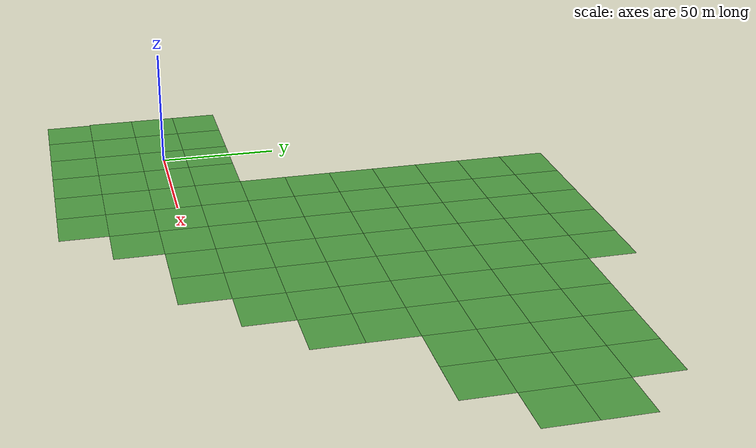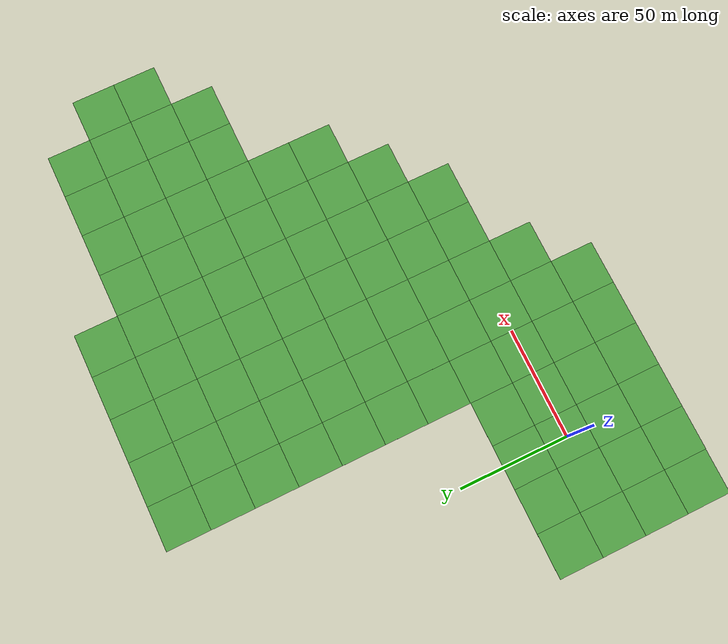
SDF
<sdf version="1.4">
 <world name="outdoor">
  <scene>
   <ambient>0.2 0.2 0.2 1.0</ambient>
   <grid>false</grid>
   <sky><clouds><speed>4</speed></clouds></sky>
  </scene>
  <plugin name="ros_interface_plugin" filename="librotors_gazebo_ros_interface_plugin.so"/>
  <physics name="default_physics" default="0" type="ode">
   <gravity>0 0 -9.8066</gravity>
   <ode>
    <solver>
     <type>quick</type>
     <iters>1</iters>
     <sor>1.3</sor>
     <use_dynamic_moi_rescaling>0</use_dynamic_moi_rescaling>
    </solver>
    <constraints>
     <cfm>0</cfm>
     <erp>0.2</erp>
     <contact_max_correcting_vel>100</contact_max_correcting_vel>
     <contact_surface_layer>0.001</contact_surface_layer>
    </constraints>
   </ode>
   <max_step_size>0.01</max_step_size>
   <real_time_factor>1</real_time_factor>
   <real_time_update_rate>100</real_time_update_rate>
  </physics>
  <plugin name="stopPhysics" filename="libStopPhysicsPlugin.so"/>
  <light type="directional" name="sun">
   <cast_shadows>false</cast_shadows>
   <pose>0 0 100 0 0 0</pose>
   <diffuse>0.8 0.8 0.8 1</diffuse>
   <specular>0.9 0.9 0.9 1</specular>
   <attenuation>
    <range>1000</range>
    <constant>0.9</constant>
    <linear>0.01</linear>
    <quadratic>0.001</quadratic>
   </attenuation>
   <direction>0.2 0.2 -0.9</direction>
  </light>
  <light type="point" name="light_bulb">
   <cast_shadows>false</cast_shadows>
   <pose>-14 0 5 0 0 0</pose>
   <diffuse>0.3 0.3 0.3 1</diffuse>
   <specular>0.0 0.0 0.0 1</specular>
   <attenuation>
    <range>80</range>
    <constant>0.9</constant>
    <linear>0.01</linear>
    <quadratic>0.001</quadratic>
   </attenuation>
  </light>
  <include><uri>model://grass_plane</uri></include>
  <model name="road_boxes">
   <static>true</static>
   <link name="link">
    <collision name="collision_1">
     <pose>51 0 0 0 0 0</pose>
     <geometry><box><size>102 7.34 0.02</size></box></geometry>
     <surface><friction><ode><mu>0.8</mu><mu2>0.8</mu2></ode></friction></surface>
    </collision>
    <collision name="collision_2">
     <pose>125 25 0 0 0 0.78539</pose>
     <geometry><box><size>72 7.34 0.02</size></box></geometry>
     <surface><friction><ode><mu>0.8</mu><mu2>0.8</mu2></ode></friction></surface>
    </collision>
    <collision name="collision_3">
     <pose>150 75 0 0 0 0</pose>
     <geometry><box><size>7.34 53 0.02</size></box></geometry>
     <surface><friction><ode><mu>0.8</mu><mu2>0.8</mu2></ode></friction></surface>
    </collision>
    <collision name="collision_4">
     <pose>173.5 100 0 0 0 0</pose>
     <geometry><box><size>54.5 7.34 0.02</size></box></geometry>
     <surface><friction><ode><mu>0.8</mu><mu2>0.8</mu2></ode></friction></surface>
    </collision>
    <collision name="collision_5">
     <pose>198 106 0 0 0 0</pose>
     <geometry><box><size>6 5 0.02</size></box></geometry>
     <surface><friction><ode><mu>0.8</mu><mu2>0.8</mu2></ode></friction></surface>
    </collision>
   </link>
  </model>
 </world>
</sdf>

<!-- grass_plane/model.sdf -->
<sdf version='1.4'>
  <model name='grass_plane'>
    <static>true</static>
    <link name='link'>
      <collision name='collision'>
        <geometry>
          <plane>
            <normal>0 0 1</normal>
            <size>500 500</size>
          </plane>
        </geometry>
        <surface>
          <friction>
            <ode>
              <mu>0.5</mu>
              <mu2>.5</mu2>
            </ode>
          </friction>
        </surface>
      </collision>

      <visual name='visual_0'>
        <pose>-40 -40 0 0 0 0</pose>

        <cast_shadows>false</cast_shadows>
        <geometry>
          <plane>
            <normal>0 0 1</normal>
            <size>20 20</size>
          </plane>
        </geometry>
        <material>
          <script>
            <uri>model://grass_plane/materials/scripts</uri>
            <uri>model://grass_plane/materials/textures</uri>
            <name>vrc/grass</name>
          </script>
        </material>
      </visual>

      <visual name='visual_1'>
        <pose>-20 -40 0 0 0 0</pose>

        <cast_shadows>false</cast_shadows>
        <geometry>
          <plane>
            <normal>0 0 1</normal>
            <size>20 20</size>
          </plane>
        </geometry>
        <material>
          <script>
            <uri>model://grass_plane/materials/scripts</uri>
            <uri>model://grass_plane/materials/textures</uri>
            <name>vrc/grass</name>
          </script>
        </material>
      </visual>

      <visual name='visual_2'>
        <pose>0 -40 0 0 0 0</pose>

        <cast_shadows>false</cast_shadows>
        <geometry>
          <plane>
            <normal>0 0 1</normal>
            <size>20 20</size>
          </plane>
        </geometry>
        <material>
          <script>
            <uri>model://grass_plane/materials/scripts</uri>
            <uri>model://grass_plane/materials/textures</uri>
            <name>vrc/grass</name>
          </script>
        </material>
      </visual>

      <visual name='visual_3'>
        <pose>20 -40 0 0 0 0</pose>

        <cast_shadows>false</cast_shadows>
        <geometry>
          <plane>
            <normal>0 0 1</normal>
            <size>20 20</size>
          </plane>
        </geometry>
        <material>
          <script>
            <uri>model://grass_plane/materials/scripts</uri>
            <uri>model://grass_plane/materials/textures</uri>
            <name>vrc/grass</name>
          </script>
        </material>
      </visual>

      <visual name='visual_4'>
        <pose>40 -40 0 0 0 0</pose>

        <cast_shadows>false</cast_shadows>
        <geometry>
          <plane>
            <normal>0 0 1</normal>
            <size>20 20</size>
          </plane>
        </geometry>
        <material>
          <script>
            <uri>model://grass_plane/materials/scripts</uri>
            <uri>model://grass_plane/materials/textures</uri>
            <name>vrc/grass</name>
          </script>
        </material>
      </visual>

      <visual name='visual_5'>
        <pose>60 -40 0 0 0 0</pose>

        <cast_shadows>false</cast_shadows>
        <geometry>
          <plane>
            <normal>0 0 1</normal>
            <size>20 20</size>
          </plane>
        </geometry>
        <material>
          <script>
            <uri>model://grass_plane/materials/scripts</uri>
            <uri>model://grass_plane/materials/textures</uri>
            <name>vrc/grass</name>
          </script>
        </material>
      </visual>

      <visual name='visual_6'>
        <pose>-40 -20 0 0 0 0</pose>

        <cast_shadows>false</cast_shadows>
        <geometry>
          <plane>
            <normal>0 0 1</normal>
            <size>20 20</size>
          </plane>
        </geometry>
        <material>
          <script>
            <uri>model://grass_plane/materials/scripts</uri>
            <uri>model://grass_plane/materials/textures</uri>
            <name>vrc/grass</name>
          </script>
        </material>
      </visual>

      <visual name='visual_7'>
        <pose>-20 -20 0 0 0 0</pose>

        <cast_shadows>false</cast_shadows>
        <geometry>
          <plane>
            <normal>0 0 1</normal>
            <size>20 20</size>
          </plane>
        </geometry>
        <material>
          <script>
            <uri>model://grass_plane/materials/scripts</uri>
            <uri>model://grass_plane/materials/textures</uri>
            <name>vrc/grass</name>
          </script>
        </material>
      </visual>

      <visual name='visual_8'>
        <pose>0 -20 0 0 0 0</pose>

        <cast_shadows>false</cast_shadows>
        <geometry>
          <plane>
            <normal>0 0 1</normal>
            <size>20 20</size>
          </plane>
        </geometry>
        <material>
          <script>
            <uri>model://grass_plane/materials/scripts</uri>
            <uri>model://grass_plane/materials/textures</uri>
            <name>vrc/grass</name>
          </script>
        </material>
      </visual>

      <visual name='visual_9'>
        <pose>20 -20 0 0 0 0</pose>

        <cast_shadows>false</cast_shadows>
        <geometry>
          <plane>
            <normal>0 0 1</normal>
            <size>20 20</size>
          </plane>
        </geometry>
        <material>
          <script>
            <uri>model://grass_plane/materials/scripts</uri>
            <uri>model://grass_plane/materials/textures</uri>
            <name>vrc/grass</name>
          </script>
        </material>
      </visual>

      <visual name='visual_10'>
        <pose>40 -20 0 0 0 0</pose>

        <cast_shadows>false</cast_shadows>
        <geometry>
          <plane>
            <normal>0 0 1</normal>
            <size>20 20</size>
          </plane>
        </geometry>
        <material>
          <script>
            <uri>model://grass_plane/materials/scripts</uri>
            <uri>model://grass_plane/materials/textures</uri>
            <name>vrc/grass</name>
          </script>
        </material>
      </visual>

      <visual name='visual_11'>
        <pose>60 -20 0 0 0 0</pose>

        <cast_shadows>false</cast_shadows>
        <geometry>
          <plane>
            <normal>0 0 1</normal>
            <size>20 20</size>
          </plane>
        </geometry>
        <material>
          <script>
            <uri>model://grass_plane/materials/scripts</uri>
            <uri>model://grass_plane/materials/textures</uri>
            <name>vrc/grass</name>
          </script>
        </material>
      </visual>

      <visual name='visual_12'>
        <pose>80 -20 0 0 0 0</pose>

        <cast_shadows>false</cast_shadows>
        <geometry>
          <plane>
            <normal>0 0 1</normal>
            <size>20 20</size>
          </plane>
        </geometry>
        <material>
          <script>
            <uri>model://grass_plane/materials/scripts</uri>
            <uri>model://grass_plane/materials/textures</uri>
            <name>vrc/grass</name>
          </script>
        </material>
      </visual>

      <visual name='visual_13'>
        <pose>-40 0 0 0 0 0</pose>

        <cast_shadows>false</cast_shadows>
        <geometry>
          <plane>
            <normal>0 0 1</normal>
            <size>20 20</size>
          </plane>
        </geometry>
        <material>
          <script>
            <uri>model://grass_plane/materials/scripts</uri>
            <uri>model://grass_plane/materials/textures</uri>
            <name>vrc/grass</name>
          </script>
        </material>
      </visual>

      <visual name='visual_14'>
        <pose>-20 0 0 0 0 0</pose>

        <cast_shadows>false</cast_shadows>
        <geometry>
          <plane>
            <normal>0 0 1</normal>
            <size>20 20</size>
          </plane>
        </geometry>
        <material>
          <script>
            <uri>model://grass_plane/materials/scripts</uri>
            <uri>model://grass_plane/materials/textures</uri>
            <name>vrc/grass</name>
          </script>
        </material>
      </visual>

      <visual name='visual_15'>
        <pose>0 0 0 0 0 0</pose>

        <cast_shadows>false</cast_shadows>
        <geometry>
          <plane>
            <normal>0 0 1</normal>
            <size>20 20</size>
          </plane>
        </geometry>
        <material>
          <script>
            <uri>model://grass_plane/materials/scripts</uri>
            <uri>model://grass_plane/materials/textures</uri>
            <name>vrc/grass</name>
          </script>
        </material>
      </visual>

      <visual name='visual_16'>
        <pose>20 0 0 0 0 0</pose>

        <cast_shadows>false</cast_shadows>
        <geometry>
          <plane>
            <normal>0 0 1</normal>
            <size>20 20</size>
          </plane>
        </geometry>
        <material>
          <script>
            <uri>model://grass_plane/materials/scripts</uri>
            <uri>model://grass_plane/materials/textures</uri>
            <name>vrc/grass</name>
          </script>
        </material>
      </visual>

      <visual name='visual_17'>
        <pose>40 0 0 0 0 0</pose>

        <cast_shadows>false</cast_shadows>
        <geometry>
          <plane>
            <normal>0 0 1</normal>
            <size>20 20</size>
          </plane>
        </geometry>
        <material>
          <script>
            <uri>model://grass_plane/materials/scripts</uri>
            <uri>model://grass_plane/materials/textures</uri>
            <name>vrc/grass</name>
          </script>
        </material>
      </visual>

      <visual name='visual_18'>
        <pose>60 0 0 0 0 0</pose>

        <cast_shadows>false</cast_shadows>
        <geometry>
          <plane>
            <normal>0 0 1</normal>
            <size>20 20</size>
          </plane>
        </geometry>
        <material>
          <script>
            <uri>model://grass_plane/materials/scripts</uri>
            <uri>model://grass_plane/materials/textures</uri>
            <name>vrc/grass</name>
          </script>
        </material>
      </visual>

      <visual name='visual_19'>
        <pose>80 0 0 0 0 0</pose>

        <cast_shadows>false</cast_shadows>
        <geometry>
          <plane>
            <normal>0 0 1</normal>
            <size>20 20</size>
          </plane>
        </geometry>
        <material>
          <script>
            <uri>model://grass_plane/materials/scripts</uri>
            <uri>model://grass_plane/materials/textures</uri>
            <name>vrc/grass</name>
          </script>
        </material>
      </visual>

      <visual name='visual_20'>
        <pose>100 0 0 0 0 0</pose>

        <cast_shadows>false</cast_shadows>
        <geometry>
          <plane>
            <normal>0 0 1</normal>
            <size>20 20</size>
          </plane>
        </geometry>
        <material>
          <script>
            <uri>model://grass_plane/materials/scripts</uri>
            <uri>model://grass_plane/materials/textures</uri>
            <name>vrc/grass</name>
          </script>
        </material>
      </visual>

      <visual name='visual_21'>
        <pose>120 0 0 0 0 0</pose>

        <cast_shadows>false</cast_shadows>
        <geometry>
          <plane>
            <normal>0 0 1</normal>
            <size>20 20</size>
          </plane>
        </geometry>
        <material>
          <script>
            <uri>model://grass_plane/materials/scripts</uri>
            <uri>model://grass_plane/materials/textures</uri>
            <name>vrc/grass</name>
          </script>
        </material>
      </visual>

      <visual name='visual_22'>
        <pose>-40 20 0 0 0 0</pose>

        <cast_shadows>false</cast_shadows>
        <geometry>
          <plane>
            <normal>0 0 1</normal>
            <size>20 20</size>
          </plane>
        </geometry>
        <material>
          <script>
            <uri>model://grass_plane/materials/scripts</uri>
            <uri>model://grass_plane/materials/textures</uri>
            <name>vrc/grass</name>
          </script>
        </material>
      </visual>

      <visual name='visual_23'>
        <pose>-20 20 0 0 0 0</pose>

        <cast_shadows>false</cast_shadows>
        <geometry>
          <plane>
            <normal>0 0 1</normal>
            <size>20 20</size>
          </plane>
        </geometry>
        <material>
          <script>
            <uri>model://grass_plane/materials/scripts</uri>
            <uri>model://grass_plane/materials/textures</uri>
            <name>vrc/grass</name>
          </script>
        </material>
      </visual>

      <visual name='visual_24'>
        <pose>0 20 0 0 0 0</pose>

        <cast_shadows>false</cast_shadows>
        <geometry>
          <plane>
            <normal>0 0 1</normal>
            <size>20 20</size>
          </plane>
        </geometry>
        <material>
          <script>
            <uri>model://grass_plane/materials/scripts</uri>
            <uri>model://grass_plane/materials/textures</uri>
            <name>vrc/grass</name>
          </script>
        </material>
      </visual>

      <visual name='visual_25'>
        <pose>20 20 0 0 0 0</pose>

        <cast_shadows>false</cast_shadows>
        <geometry>
          <plane>
            <normal>0 0 1</normal>
            <size>20 20</size>
          </plane>
        </geometry>
        <material>
          <script>
            <uri>model://grass_plane/materials/scripts</uri>
            <uri>model://grass_plane/materials/textures</uri>
            <name>vrc/grass</name>
          </script>
        </material>
      </visual>

      <visual name='visual_26'>
        <pose>40 20 0 0 0 0</pose>

        <cast_shadows>false</cast_shadows>
        <geometry>
          <plane>
            <normal>0 0 1</normal>
            <size>20 20</size>
          </plane>
        </geometry>
        <material>
          <script>
            <uri>model://grass_plane/materials/scripts</uri>
            <uri>model://grass_plane/materials/textures</uri>
            <name>vrc/grass</name>
          </script>
        </material>
      </visual>

      <visual name='visual_27'>
        <pose>60 20 0 0 0 0</pose>

        <cast_shadows>false</cast_shadows>
        <geometry>
          <plane>
            <normal>0 0 1</normal>
            <size>20 20</size>
          </plane>
        </geometry>
        <material>
          <script>
            <uri>model://grass_plane/materials/scripts</uri>
            <uri>model://grass_plane/materials/textures</uri>
            <name>vrc/grass</name>
          </script>
        </material>
      </visual>

      <visual name='visual_28'>
        <pose>80 20 0 0 0 0</pose>

        <cast_shadows>false</cast_shadows>
        <geometry>
          <plane>
            <normal>0 0 1</normal>
            <size>20 20</size>
          </plane>
        </geometry>
        <material>
          <script>
            <uri>model://grass_plane/materials/scripts</uri>
            <uri>model://grass_plane/materials/textures</uri>
            <name>vrc/grass</name>
          </script>
        </material>
      </visual>

      <visual name='visual_29'>
        <pose>100 20 0 0 0 0</pose>

        <cast_shadows>false</cast_shadows>
        <geometry>
          <plane>
            <normal>0 0 1</normal>
            <size>20 20</size>
          </plane>
        </geometry>
        <material>
          <script>
            <uri>model://grass_plane/materials/scripts</uri>
            <uri>model://grass_plane/materials/textures</uri>
            <name>vrc/grass</name>
          </script>
        </material>
      </visual>

      <visual name='visual_30'>
        <pose>120 20 0 0 0 0</pose>

        <cast_shadows>false</cast_shadows>
        <geometry>
          <plane>
            <normal>0 0 1</normal>
            <size>20 20</size>
          </plane>
        </geometry>
        <material>
          <script>
            <uri>model://grass_plane/materials/scripts</uri>
            <uri>model://grass_plane/materials/textures</uri>
            <name>vrc/grass</name>
          </script>
        </material>
      </visual>

      <visual name='visual_31'>
        <pose>140 20 0 0 0 0</pose>

        <cast_shadows>false</cast_shadows>
        <geometry>
          <plane>
            <normal>0 0 1</normal>
            <size>20 20</size>
          </plane>
        </geometry>
        <material>
          <script>
            <uri>model://grass_plane/materials/scripts</uri>
            <uri>model://grass_plane/materials/textures</uri>
            <name>vrc/grass</name>
          </script>
        </material>
      </visual>

      <visual name='visual_32'>
        <pose>40 40 0 0 0 0</pose>

        <cast_shadows>false</cast_shadows>
        <geometry>
          <plane>
            <normal>0 0 1</normal>
            <size>20 20</size>
          </plane>
        </geometry>
        <material>
          <script>
            <uri>model://grass_plane/materials/scripts</uri>
            <uri>model://grass_plane/materials/textures</uri>
            <name>vrc/grass</name>
          </script>
        </material>
      </visual>

      <visual name='visual_33'>
        <pose>60 40 0 0 0 0</pose>

        <cast_shadows>false</cast_shadows>
        <geometry>
          <plane>
            <normal>0 0 1</normal>
            <size>20 20</size>
          </plane>
        </geometry>
        <material>
          <script>
            <uri>model://grass_plane/materials/scripts</uri>
            <uri>model://grass_plane/materials/textures</uri>
            <name>vrc/grass</name>
          </script>
        </material>
      </visual>

      <visual name='visual_34'>
        <pose>80 40 0 0 0 0</pose>

        <cast_shadows>false</cast_shadows>
        <geometry>
          <plane>
            <normal>0 0 1</normal>
            <size>20 20</size>
          </plane>
        </geometry>
        <material>
          <script>
            <uri>model://grass_plane/materials/scripts</uri>
            <uri>model://grass_plane/materials/textures</uri>
            <name>vrc/grass</name>
          </script>
        </material>
      </visual>

      <visual name='visual_35'>
        <pose>100 40 0 0 0 0</pose>

        <cast_shadows>false</cast_shadows>
        <geometry>
          <plane>
            <normal>0 0 1</normal>
            <size>20 20</size>
          </plane>
        </geometry>
        <material>
          <script>
            <uri>model://grass_plane/materials/scripts</uri>
            <uri>model://grass_plane/materials/textures</uri>
            <name>vrc/grass</name>
          </script>
        </material>
      </visual>

      <visual name='visual_36'>
        <pose>120 40 0 0 0 0</pose>

        <cast_shadows>false</cast_shadows>
        <geometry>
          <plane>
            <normal>0 0 1</normal>
            <size>20 20</size>
          </plane>
        </geometry>
        <material>
          <script>
            <uri>model://grass_plane/materials/scripts</uri>
            <uri>model://grass_plane/materials/textures</uri>
            <name>vrc/grass</name>
          </script>
        </material>
      </visual>

      <visual name='visual_37'>
        <pose>140 40 0 0 0 0</pose>

        <cast_shadows>false</cast_shadows>
        <geometry>
          <plane>
            <normal>0 0 1</normal>
            <size>20 20</size>
          </plane>
        </geometry>
        <material>
          <script>
            <uri>model://grass_plane/materials/scripts</uri>
            <uri>model://grass_plane/materials/textures</uri>
            <name>vrc/grass</name>
          </script>
        </material>
      </visual>

      <visual name='visual_38'>
        <pose>160 40 0 0 0 0</pose>

        <cast_shadows>false</cast_shadows>
        <geometry>
          <plane>
            <normal>0 0 1</normal>
            <size>20 20</size>
          </plane>
        </geometry>
        <material>
          <script>
            <uri>model://grass_plane/materials/scripts</uri>
            <uri>model://grass_plane/materials/textures</uri>
            <name>vrc/grass</name>
          </script>
        </material>
      </visual>

      <visual name='visual_39'>
        <pose>40 60 0 0 0 0</pose>

        <cast_shadows>false</cast_shadows>
        <geometry>
          <plane>
            <normal>0 0 1</normal>
            <size>20 20</size>
          </plane>
        </geometry>
        <material>
          <script>
            <uri>model://grass_plane/materials/scripts</uri>
            <uri>model://grass_plane/materials/textures</uri>
            <name>vrc/grass</name>
          </script>
        </material>
      </visual>

      <visual name='visual_40'>
        <pose>60 60 0 0 0 0</pose>

        <cast_shadows>false</cast_shadows>
        <geometry>
          <plane>
            <normal>0 0 1</normal>
            <size>20 20</size>
          </plane>
        </geometry>
        <material>
          <script>
            <uri>model://grass_plane/materials/scripts</uri>
            <uri>model://grass_plane/materials/textures</uri>
            <name>vrc/grass</name>
          </script>
        </material>
      </visual>

      <visual name='visual_41'>
        <pose>80 60 0 0 0 0</pose>

        <cast_shadows>false</cast_shadows>
        <geometry>
          <plane>
            <normal>0 0 1</normal>
            <size>20 20</size>
          </plane>
        </geometry>
        <material>
          <script>
            <uri>model://grass_plane/materials/scripts</uri>
            <uri>model://grass_plane/materials/textures</uri>
            <name>vrc/grass</name>
          </script>
        </material>
      </visual>

      <visual name='visual_42'>
        <pose>100 60 0 0 0 0</pose>

        <cast_shadows>false</cast_shadows>
        <geometry>
          <plane>
            <normal>0 0 1</normal>
            <size>20 20</size>
          </plane>
        </geometry>
        <material>
          <script>
            <uri>model://grass_plane/materials/scripts</uri>
            <uri>model://grass_plane/materials/textures</uri>
            <name>vrc/grass</name>
          </script>
        </material>
      </visual>

      <visual name='visual_43'>
        <pose>120 60 0 0 0 0</pose>

        <cast_shadows>false</cast_shadows>
        <geometry>
          <plane>
            <normal>0 0 1</normal>
            <size>20 20</size>
          </plane>
        </geometry>
        <material>
          <script>
            <uri>model://grass_plane/materials/scripts</uri>
            <uri>model://grass_plane/materials/textures</uri>
            <name>vrc/grass</name>
          </script>
        </material>
      </visual>

      <visual name='visual_44'>
        <pose>140 60 0 0 0 0</pose>

        <cast_shadows>false</cast_shadows>
        <geometry>
          <plane>
            <normal>0 0 1</normal>
            <size>20 20</size>
          </plane>
        </geometry>
        <material>
          <script>
            <uri>model://grass_plane/materials/scripts</uri>
            <uri>model://grass_plane/materials/textures</uri>
            <name>vrc/grass</name>
          </script>
        </material>
      </visual>

      <visual name='visual_45'>
        <pose>160 60 0 0 0 0</pose>

        <cast_shadows>false</cast_shadows>
        <geometry>
          <plane>
            <normal>0 0 1</normal>
            <size>20 20</size>
          </plane>
        </geometry>
        <material>
          <script>
            <uri>model://grass_plane/materials/scripts</uri>
            <uri>model://grass_plane/materials/textures</uri>
            <name>vrc/grass</name>
          </script>
        </material>
      </visual>

      <visual name='visual_46'>
        <pose>40 80 0 0 0 0</pose>

        <cast_shadows>false</cast_shadows>
        <geometry>
          <plane>
            <normal>0 0 1</normal>
            <size>20 20</size>
          </plane>
        </geometry>
        <material>
          <script>
            <uri>model://grass_plane/materials/scripts</uri>
            <uri>model://grass_plane/materials/textures</uri>
            <name>vrc/grass</name>
          </script>
        </material>
      </visual>

      <visual name='visual_47'>
        <pose>60 80 0 0 0 0</pose>

        <cast_shadows>false</cast_shadows>
        <geometry>
          <plane>
            <normal>0 0 1</normal>
            <size>20 20</size>
          </plane>
        </geometry>
        <material>
          <script>
            <uri>model://grass_plane/materials/scripts</uri>
            <uri>model://grass_plane/materials/textures</uri>
            <name>vrc/grass</name>
          </script>
        </material>
      </visual>

      <visual name='visual_48'>
        <pose>80 80 0 0 0 0</pose>

        <cast_shadows>false</cast_shadows>
        <geometry>
          <plane>
            <normal>0 0 1</normal>
            <size>20 20</size>
          </plane>
        </geometry>
        <material>
          <script>
            <uri>model://grass_plane/materials/scripts</uri>
            <uri>model://grass_plane/materials/textures</uri>
            <name>vrc/grass</name>
          </script>
        </material>
      </visual>

      <visual name='visual_49'>
        <pose>100 80 0 0 0 0</pose>

        <cast_shadows>false</cast_shadows>
        <geometry>
          <plane>
            <normal>0 0 1</normal>
            <size>20 20</size>
          </plane>
        </geometry>
        <material>
          <script>
            <uri>model://grass_plane/materials/scripts</uri>
            <uri>model://grass_plane/materials/textures</uri>
            <name>vrc/grass</name>
          </script>
        </material>
      </visual>

      <visual name='visual_50'>
        <pose>120 80 0 0 0 0</pose>

        <cast_shadows>false</cast_shadows>
        <geometry>
          <plane>
            <normal>0 0 1</normal>
            <size>20 20</size>
          </plane>
        </geometry>
        <material>
          <script>
            <uri>model://grass_plane/materials/scripts</uri>
            <uri>model://grass_plane/materials/textures</uri>
            <name>vrc/grass</name>
          </script>
        </material>
      </visual>

      <visual name='visual_51'>
        <pose>140 80 0 0 0 0</pose>

        <cast_shadows>false</cast_shadows>
        <geometry>
          <plane>
            <normal>0 0 1</normal>
            <size>20 20</size>
          </plane>
        </geometry>
        <material>
          <script>
            <uri>model://grass_plane/materials/scripts</uri>
            <uri>model://grass_plane/materials/textures</uri>
            <name>vrc/grass</name>
          </script>
        </material>
      </visual>

      <visual name='visual_52'>
        <pose>160 80 0 0 0 0</pose>

        <cast_shadows>false</cast_shadows>
        <geometry>
          <plane>
            <normal>0 0 1</normal>
            <size>20 20</size>
          </plane>
        </geometry>
        <material>
          <script>
            <uri>model://grass_plane/materials/scripts</uri>
            <uri>model://grass_plane/materials/textures</uri>
            <name>vrc/grass</name>
          </script>
        </material>
      </visual>

      <visual name='visual_53'>
        <pose>180 80 0 0 0 0</pose>

        <cast_shadows>false</cast_shadows>
        <geometry>
          <plane>
            <normal>0 0 1</normal>
            <size>20 20</size>
          </plane>
        </geometry>
        <material>
          <script>
            <uri>model://grass_plane/materials/scripts</uri>
            <uri>model://grass_plane/materials/textures</uri>
            <name>vrc/grass</name>
          </script>
        </material>
      </visual>

      <visual name='visual_54'>
        <pose>200 80 0 0 0 0</pose>

        <cast_shadows>false</cast_shadows>
        <geometry>
          <plane>
            <normal>0 0 1</normal>
            <size>20 20</size>
          </plane>
        </geometry>
        <material>
          <script>
            <uri>model://grass_plane/materials/scripts</uri>
            <uri>model://grass_plane/materials/textures</uri>
            <name>vrc/grass</name>
          </script>
        </material>
      </visual>

      <visual name='visual_55'>
        <pose>40 100 0 0 0 0</pose>

        <cast_shadows>false</cast_shadows>
        <geometry>
          <plane>
            <normal>0 0 1</normal>
            <size>20 20</size>
          </plane>
        </geometry>
        <material>
          <script>
            <uri>model://grass_plane/materials/scripts</uri>
            <uri>model://grass_plane/materials/textures</uri>
            <name>vrc/grass</name>
          </script>
        </material>
      </visual>

      <visual name='visual_56'>
        <pose>60 100 0 0 0 0</pose>

        <cast_shadows>false</cast_shadows>
        <geometry>
          <plane>
            <normal>0 0 1</normal>
            <size>20 20</size>
          </plane>
        </geometry>
        <material>
          <script>
            <uri>model://grass_plane/materials/scripts</uri>
            <uri>model://grass_plane/materials/textures</uri>
            <name>vrc/grass</name>
          </script>
        </material>
      </visual>

      <visual name='visual_57'>
        <pose>80 100 0 0 0 0</pose>

        <cast_shadows>false</cast_shadows>
        <geometry>
          <plane>
            <normal>0 0 1</normal>
            <size>20 20</size>
          </plane>
        </geometry>
        <material>
          <script>
            <uri>model://grass_plane/materials/scripts</uri>
            <uri>model://grass_plane/materials/textures</uri>
            <name>vrc/grass</name>
          </script>
        </material>
      </visual>

      <visual name='visual_58'>
        <pose>100 100 0 0 0 0</pose>

        <cast_shadows>false</cast_shadows>
        <geometry>
          <plane>
            <normal>0 0 1</normal>
            <size>20 20</size>
          </plane>
        </geometry>
        <material>
          <script>
            <uri>model://grass_plane/materials/scripts</uri>
            <uri>model://grass_plane/materials/textures</uri>
            <name>vrc/grass</name>
          </script>
        </material>
      </visual>

      <visual name='visual_59'>
        <pose>120 100 0 0 0 0</pose>

        <cast_shadows>false</cast_shadows>
        <geometry>
          <plane>
            <normal>0 0 1</normal>
            <size>20 20</size>
          </plane>
        </geometry>
        <material>
          <script>
            <uri>model://grass_plane/materials/scripts</uri>
            <uri>model://grass_plane/materials/textures</uri>
            <name>vrc/grass</name>
          </script>
        </material>
      </visual>

      <visual name='visual_60'>
        <pose>140 100 0 0 0 0</pose>

        <cast_shadows>false</cast_shadows>
        <geometry>
          <plane>
            <normal>0 0 1</normal>
            <size>20 20</size>
          </plane>
        </geometry>
        <material>
          <script>
            <uri>model://grass_plane/materials/scripts</uri>
            <uri>model://grass_plane/materials/textures</uri>
            <name>vrc/grass</name>
          </script>
        </material>
      </visual>

      <visual name='visual_61'>
        <pose>160 100 0 0 0 0</pose>

        <cast_shadows>false</cast_shadows>
        <geometry>
          <plane>
            <normal>0 0 1</normal>
            <size>20 20</size>
          </plane>
        </geometry>
        <material>
          <script>
            <uri>model://grass_plane/materials/scripts</uri>
            <uri>model://grass_plane/materials/textures</uri>
            <name>vrc/grass</name>
          </script>
        </material>
      </visual>

      <visual name='visual_62'>
        <pose>180 100 0 0 0 0</pose>

        <cast_shadows>false</cast_shadows>
        <geometry>
          <plane>
            <normal>0 0 1</normal>
            <size>20 20</size>
          </plane>
        </geometry>
        <material>
          <script>
            <uri>model://grass_plane/materials/scripts</uri>
            <uri>model://grass_plane/materials/textures</uri>
            <name>vrc/grass</name>
          </script>
        </material>
      </visual>

      <visual name='visual_63'>
        <pose>200 100 0 0 0 0</pose>

        <cast_shadows>false</cast_shadows>
        <geometry>
          <plane>
            <normal>0 0 1</normal>
            <size>20 20</size>
          </plane>
        </geometry>
        <material>
          <script>
            <uri>model://grass_plane/materials/scripts</uri>
            <uri>model://grass_plane/materials/textures</uri>
            <name>vrc/grass</name>
          </script>
        </material>
      </visual>

      <visual name='visual_63a'>
        <pose>220 100 0 0 0 0</pose>

        <cast_shadows>false</cast_shadows>
        <geometry>
          <plane>
            <normal>0 0 1</normal>
            <size>20 20</size>
          </plane>
        </geometry>
        <material>
          <script>
            <uri>model://grass_plane/materials/scripts</uri>
            <uri>model://grass_plane/materials/textures</uri>
            <name>vrc/grass</name>
          </script>
        </material>
      </visual>

      <visual name='visual_64'>
        <pose>40 120 0 0 0 0</pose>

        <cast_shadows>false</cast_shadows>
        <geometry>
          <plane>
            <normal>0 0 1</normal>
            <size>20 20</size>
          </plane>
        </geometry>
        <material>
          <script>
            <uri>model://grass_plane/materials/scripts</uri>
            <uri>model://grass_plane/materials/textures</uri>
            <name>vrc/grass</name>
          </script>
        </material>
      </visual>

      <visual name='visual_65'>
        <pose>60 120 0 0 0 0</pose>

        <cast_shadows>false</cast_shadows>
        <geometry>
          <plane>
            <normal>0 0 1</normal>
            <size>20 20</size>
          </plane>
        </geometry>
        <material>
          <script>
            <uri>model://grass_plane/materials/scripts</uri>
            <uri>model://grass_plane/materials/textures</uri>
            <name>vrc/grass</name>
          </script>
        </material>
      </visual>

      <visual name='visual_66'>
        <pose>80 120 0 0 0 0</pose>

        <cast_shadows>false</cast_shadows>
        <geometry>
          <plane>
            <normal>0 0 1</normal>
            <size>20 20</size>
          </plane>
        </geometry>
        <material>
          <script>
            <uri>model://grass_plane/materials/scripts</uri>
            <uri>model://grass_plane/materials/textures</uri>
            <name>vrc/grass</name>
          </script>
        </material>
      </visual>

      <visual name='visual_67'>
        <pose>100 120 0 0 0 0</pose>

        <cast_shadows>false</cast_shadows>
        <geometry>
          <plane>
            <normal>0 0 1</normal>
            <size>20 20</size>
          </plane>
        </geometry>
        <material>
          <script>
            <uri>model://grass_plane/materials/scripts</uri>
            <uri>model://grass_plane/materials/textures</uri>
            <name>vrc/grass</name>
          </script>
        </material>
      </visual>

      <visual name='visual_68'>
        <pose>120 120 0 0 0 0</pose>

        <cast_shadows>false</cast_shadows>
        <geometry>
          <plane>
            <normal>0 0 1</normal>
            <size>20 20</size>
          </plane>
        </geometry>
        <material>
          <script>
            <uri>model://grass_plane/materials/scripts</uri>
            <uri>model://grass_plane/materials/textures</uri>
            <name>vrc/grass</name>
          </script>
        </material>
      </visual>

      <visual name='visual_69'>
        <pose>140 120 0 0 0 0</pose>

        <cast_shadows>false</cast_shadows>
        <geometry>
          <plane>
            <normal>0 0 1</normal>
            <size>20 20</size>
          </plane>
        </geometry>
        <material>
          <script>
            <uri>model://grass_plane/materials/scripts</uri>
            <uri>model://grass_plane/materials/textures</uri>
            <name>vrc/grass</name>
          </script>
        </material>
      </visual>

      <visual name='visual_70'>
        <pose>160 120 0 0 0 0</pose>

        <cast_shadows>false</cast_shadows>
        <geometry>
          <plane>
            <normal>0 0 1</normal>
            <size>20 20</size>
          </plane>
        </geometry>
        <material>
          <script>
            <uri>model://grass_plane/materials/scripts</uri>
            <uri>model://grass_plane/materials/textures</uri>
            <name>vrc/grass</name>
          </script>
        </material>
      </visual>

      <visual name='visual_71'>
        <pose>180 120 0 0 0 0</pose>

        <cast_shadows>false</cast_shadows>
        <geometry>
          <plane>
            <normal>0 0 1</normal>
            <size>20 20</size>
          </plane>
        </geometry>
        <material>
          <script>
            <uri>model://grass_plane/materials/scripts</uri>
            <uri>model://grass_plane/materials/textures</uri>
            <name>vrc/grass</name>
          </script>
        </material>
      </visual>

      <visual name='visual_72'>
        <pose>200 120 0 0 0 0</pose>

        <cast_shadows>false</cast_shadows>
        <geometry>
          <plane>
            <normal>0 0 1</normal>
            <size>20 20</size>
          </plane>
        </geometry>
        <material>
          <script>
            <uri>model://grass_plane/materials/scripts</uri>
            <uri>model://grass_plane/materials/textures</uri>
            <name>vrc/grass</name>
          </script>
        </material>
      </visual>

      <visual name='visual_72a'>
        <pose>220 120 0 0 0 0</pose>

        <cast_shadows>false</cast_shadows>
        <geometry>
          <plane>
            <normal>0 0 1</normal>
            <size>20 20</size>
          </plane>
        </geometry>
        <material>
          <script>
            <uri>model://grass_plane/materials/scripts</uri>
            <uri>model://grass_plane/materials/textures</uri>
            <name>vrc/grass</name>
          </script>
        </material>
      </visual>

      <visual name='visual_73'>
        <pose>40 140 0 0 0 0</pose>

        <cast_shadows>false</cast_shadows>
        <geometry>
          <plane>
            <normal>0 0 1</normal>
            <size>20 20</size>
          </plane>
        </geometry>
        <material>
          <script>
            <uri>model://grass_plane/materials/scripts</uri>
            <uri>model://grass_plane/materials/textures</uri>
            <name>vrc/grass</name>
          </script>
        </material>
      </visual>

      <visual name='visual_74'>
        <pose>60 140 0 0 0 0</pose>

        <cast_shadows>false</cast_shadows>
        <geometry>
          <plane>
            <normal>0 0 1</normal>
            <size>20 20</size>
          </plane>
        </geometry>
        <material>
          <script>
            <uri>model://grass_plane/materials/scripts</uri>
            <uri>model://grass_plane/materials/textures</uri>
            <name>vrc/grass</name>
          </script>
        </material>
      </visual>

      <visual name='visual_75'>
        <pose>80 140 0 0 0 0</pose>

        <cast_shadows>false</cast_shadows>
        <geometry>
          <plane>
            <normal>0 0 1</normal>
            <size>20 20</size>
          </plane>
        </geometry>
        <material>
          <script>
            <uri>model://grass_plane/materials/scripts</uri>
            <uri>model://grass_plane/materials/textures</uri>
            <name>vrc/grass</name>
          </script>
        </material>
      </visual>

      <visual name='visual_76'>
        <pose>100 140 0 0 0 0</pose>

        <cast_shadows>false</cast_shadows>
        <geometry>
          <plane>
            <normal>0 0 1</normal>
            <size>20 20</size>
          </plane>
        </geometry>
        <material>
          <script>
            <uri>model://grass_plane/materials/scripts</uri>
            <uri>model://grass_plane/materials/textures</uri>
            <name>vrc/grass</name>
          </script>
        </material>
      </visual>

      <visual name='visual_77'>
        <pose>120 140 0 0 0 0</pose>

        <cast_shadows>false</cast_shadows>
        <geometry>
          <plane>
            <normal>0 0 1</normal>
            <size>20 20</size>
          </plane>
        </geometry>
        <material>
          <script>
            <uri>model://grass_plane/materials/scripts</uri>
            <uri>model://grass_plane/materials/textures</uri>
            <name>vrc/grass</name>
          </script>
        </material>
      </visual>

      <visual name='visual_78'>
        <pose>140 140 0 0 0 0</pose>

        <cast_shadows>false</cast_shadows>
        <geometry>
          <plane>
            <normal>0 0 1</normal>
            <size>20 20</size>
          </plane>
        </geometry>
        <material>
          <script>
            <uri>model://grass_plane/materials/scripts</uri>
            <uri>model://grass_plane/materials/textures</uri>
            <name>vrc/grass</name>
          </script>
        </material>
      </visual>

      <visual name='visual_79'>
        <pose>160 140 0 0 0 0</pose>

        <cast_shadows>false</cast_shadows>
        <geometry>
          <plane>
            <normal>0 0 1</normal>
            <size>20 20</size>
          </plane>
        </geometry>
        <material>
          <script>
            <uri>model://grass_plane/materials/scripts</uri>
            <uri>model://grass_plane/materials/textures</uri>
            <name>vrc/grass</name>
          </script>
        </material>
      </visual>

      <visual name='visual_80'>
        <pose>180 140 0 0 0 0</pose>

        <cast_shadows>false</cast_shadows>
        <geometry>
          <plane>
            <normal>0 0 1</normal>
            <size>20 20</size>
          </plane>
        </geometry>
        <material>
          <script>
            <uri>model://grass_plane/materials/scripts</uri>
            <uri>model://grass_plane/materials/textures</uri>
            <name>vrc/grass</name>
          </script>
        </material>
      </visual>

      <visual name='visual_81'>
        <pose>200 140 0 0 0 0</pose>

        <cast_shadows>false</cast_shadows>
        <geometry>
          <plane>
            <normal>0 0 1</normal>
            <size>20 20</size>
          </plane>
        </geometry>
        <material>
          <script>
            <uri>model://grass_plane/materials/scripts</uri>
            <uri>model://grass_plane/materials/textures</uri>
            <name>vrc/grass</name>
          </script>
        </material>
      </visual>

      <visual name='visual_82'>
        <pose>40 160 0 0 0 0</pose>

        <cast_shadows>false</cast_shadows>
        <geometry>
          <plane>
            <normal>0 0 1</normal>
            <size>20 20</size>
          </plane>
        </geometry>
        <material>
          <script>
            <uri>model://grass_plane/materials/scripts</uri>
            <uri>model://grass_plane/materials/textures</uri>
            <name>vrc/grass</name>
          </script>
        </material>
      </visual>

      <visual name='visual_83'>
        <pose>60 160 0 0 0 0</pose>

        <cast_shadows>false</cast_shadows>
        <geometry>
          <plane>
            <normal>0 0 1</normal>
            <size>20 20</size>
          </plane>
        </geometry>
        <material>
          <script>
            <uri>model://grass_plane/materials/scripts</uri>
            <uri>model://grass_plane/materials/textures</uri>
            <name>vrc/grass</name>
          </script>
        </material>
      </visual>

      <visual name='visual_84'>
        <pose>80 160 0 0 0 0</pose>

        <cast_shadows>false</cast_shadows>
        <geometry>
          <plane>
            <normal>0 0 1</normal>
            <size>20 20</size>
          </plane>
        </geometry>
        <material>
          <script>
            <uri>model://grass_plane/materials/scripts</uri>
            <uri>model://grass_plane/materials/textures</uri>
            <name>vrc/grass</name>
          </script>
        </material>
      </visual>

      <visual name='visual_85'>
        <pose>100 160 0 0 0 0</pose>

        <cast_shadows>false</cast_shadows>
        <geometry>
          <plane>
            <normal>0 0 1</normal>
            <size>20 20</size>
          </plane>
        </geometry>
        <material>
          <script>
            <uri>model://grass_plane/materials/scripts</uri>
            <uri>model://grass_plane/materials/textures</uri>
            <name>vrc/grass</name>
          </script>
        </material>
      </visual>

      <visual name='visual_86'>
        <pose>120 160 0 0 0 0</pose>

        <cast_shadows>false</cast_shadows>
        <geometry>
          <plane>
            <normal>0 0 1</normal>
            <size>20 20</size>
          </plane>
        </geometry>
        <material>
          <script>
            <uri>model://grass_plane/materials/scripts</uri>
            <uri>model://grass_plane/materials/textures</uri>
            <name>vrc/grass</name>
          </script>
        </material>
      </visual>
    </link>
  </model>
</sdf>
